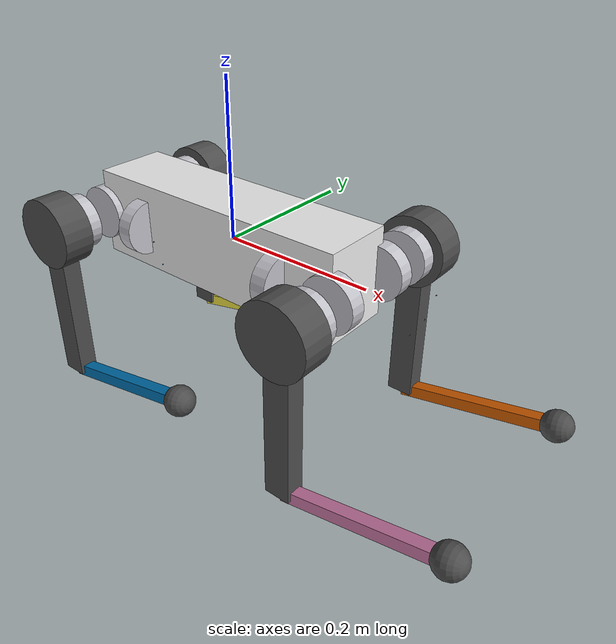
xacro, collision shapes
<?xml version="1.0"?>

<robot name="go1" xmlns:xacro="http://www.ros.org/wiki/xacro">

    <xacro:arg name="DEBUG" default="false" />
    <xacro:arg name="MOCAP" default="false" />

    <xacro:include filename="$(find legged_unitree_description)/urdf/go1/const.xacro" />
    <xacro:include filename="$(find legged_unitree_description)/urdf/go1/materials.xacro" />
    <xacro:include filename="$(find legged_unitree_description)/urdf/go1/leg.xacro" />
    <xacro:include filename="$(find legged_unitree_description)/urdf/go1/gazebo.xacro" />
    <xacro:include filename="$(find legged_unitree_description)/urdf/go1/depthCamera.xacro" />
    <xacro:include filename="$(find legged_unitree_description)/urdf/go1/ultraSound.xacro" />
    <xacro:include filename="$(find legged_unitree_description)/urdf/go1/imu.xacro" />
    <xacro:if value="$(arg MOCAP)">
        <xacro:include filename="$(find legged_unitree_description)/urdf/go1/mocap.xacro" />
    </xacro:if>

    <!-- Rotor related joint and link is only for demonstrate location. -->
    <!-- Actually, the rotor will rotate and the joint is not fixed. Reduction ratio should be
    considered. -->

    <!-- Debug mode will hung up the robot, use "true" or "false" to switch it. -->

    <link name="base">
        <visual>
            <origin rpy="0 0 0" xyz="0 0 0" />
            <geometry>
                <mesh filename="package://legged_unitree_description/meshes/go1/trunk.dae"
                    scale="1 1 1" />
            </geometry>
        </visual>
        <collision>
            <origin rpy="0 0 0" xyz="0 0 0" />
            <geometry>
                <box size="${trunk_length} ${trunk_width} ${trunk_height}" />
            </geometry>
        </collision>
        <inertial>
            <origin rpy="0 0 0" xyz="${trunk_com_x} ${trunk_com_y} ${trunk_com_z}" />
            <mass value="${trunk_mass}" />
            <inertia
                ixx="${trunk_ixx}" ixy="${trunk_ixy}" ixz="${trunk_ixz}"
                iyy="${trunk_iyy}" iyz="${trunk_iyz}"
                izz="${trunk_izz}" />
        </inertial>
    </link>

    <xacro:IMU connected_to="base" imu_name="unitree_imu" xyz="0. 0. 0." rpy="0. 0. 0." />
    <xacro:if value="$(arg MOCAP)">
        <xacro:mocap connected_to="base" mocap_name="unitree_mocap_sensor"
            xyz="0. 0. ${trunk_height/2}"
            rpy="0. 0. 0." />
    </xacro:if>

    <xacro:leg name="RF" mirror="-1" mirror_dae="False" front_hind="1" front_hind_dae="True" />
    <xacro:leg name="LF" mirror="1" mirror_dae="True" front_hind="1" front_hind_dae="True" />
    <xacro:leg name="RH" mirror="-1" mirror_dae="False" front_hind="-1" front_hind_dae="False" />
    <xacro:leg name="LH" mirror="1" mirror_dae="True" front_hind="-1" front_hind_dae="False" />

    <xacro:depthCamera camID="1" name="face">
        <origin rpy="${PI} 0 0" xyz="0.2785 0.0125 0.0167" />
    </xacro:depthCamera>

    <xacro:depthCamera camID="2" name="chin">
        <origin rpy="${PI} ${PI/2} 0" xyz="0.2522 0.0125 -0.0436" />
    </xacro:depthCamera>

    <xacro:depthCamera camID="3" name="left">
        <origin rpy="${PI} 0.2618 ${PI/2}" xyz="-0.066 0.082 -0.0176" />
    </xacro:depthCamera>

    <xacro:depthCamera camID="4" name="right">
        <origin rpy="${PI} 0.2618 ${-PI/2}" xyz="-0.041 -0.082 -0.0176" />
    </xacro:depthCamera>

    <xacro:depthCamera camID="5" name="rearDown">
        <origin rpy="${PI} ${PI/2} 0" xyz="-0.0825 0.0125 -0.04365" />
    </xacro:depthCamera>

    <joint name="camera_laserscan_joint_left" type="fixed">
        <origin rpy="0 0.2618 0" xyz="0 0 0" />
        <parent link="camera_left" />
        <child link="camera_laserscan_link_left" />
    </joint>

    <link name="camera_laserscan_link_left">
    </link>

    <joint name="camera_laserscan_joint_right" type="fixed">
        <origin rpy="0 0.2618 0" xyz="0 0 0" />
        <parent link="camera_right" />
        <child link="camera_laserscan_link_right" />
    </joint>

    <link name="camera_laserscan_link_right">
    </link>

    <xacro:ultraSound name="left">
        <origin rpy="0 0.2618 ${PI/2}" xyz="-0.0535  0.0826 0.00868" />
    </xacro:ultraSound>

    <xacro:ultraSound name="right">
        <origin rpy="0 0.2618 ${-PI/2}" xyz="-0.0535 -0.0826 0.00868" />
    </xacro:ultraSound>

    <xacro:ultraSound name="face">
        <origin rpy="0 0 0" xyz="0.2747 0.0 -0.0088" />
    </xacro:ultraSound>
</robot>

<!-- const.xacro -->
<robot xmlns:xacro="http://www.ros.org/wiki/xacro">

    <!-- Constants for robot dimensions -->
    <xacro:property name="PI" value="3.1415926535897931" />
    <xacro:property name="stick_mass" value="0.00001" />

    <!-- simplified collision value -->
    <xacro:property name="trunk_width" value="0.0935" />
    <xacro:property name="trunk_length" value="0.3762" />
    <xacro:property name="trunk_height" value="0.114" />
    <xacro:property name="hip_radius" value="0.046" />
    <xacro:property name="hip_length" value="0.04" />
    <xacro:property name="thigh_shoulder_radius" value="0.041" />
    <xacro:property name="thigh_shoulder_length" value="0.032" />
    <xacro:property name="thigh_width" value="0.0245" />
    <xacro:property name="thigh_height" value="0.034" />
    <xacro:property name="calf_width" value="0.016" />
    <xacro:property name="calf_height" value="0.016" />
    <xacro:property name="foot_radius" value="0.02" />
    <xacro:property name="stick_radius" value="0.01" />
    <xacro:property name="stick_length" value="0.2" />

    <!-- kinematic value -->
    <xacro:property name="thigh_offset" value="0.08" />
    <xacro:property name="thigh_length" value="0.213" />
    <xacro:property name="calf_length" value="0.213" />

    <!-- leg offset from trunk center value -->
    <xacro:property name="leg_offset_x" value="0.1881" />
    <xacro:property name="leg_offset_y" value="0.04675" />
    <xacro:property name="hip_offset" value="0.08" />

    <!-- offset of link and rotor locations (left front) -->
    <xacro:property name="hip_offset_x" value="0.1881" />
    <xacro:property name="hip_offset_y" value="0.04675" />
    <xacro:property name="hip_offset_z" value="0.0" />
    <xacro:property name="hip_rotor_offset_x" value="0.11215" />
    <xacro:property name="hip_rotor_offset_y" value="0.04675" />
    <xacro:property name="hip_rotor_offset_z" value="0.0" />

    <xacro:property name="thigh_offset_x" value="0" />
    <xacro:property name="thigh_offset_y" value="0.08" />
    <xacro:property name="thigh_offset_z" value="0.0" />
    <xacro:property name="thigh_rotor_offset_x" value="0.0" />
    <xacro:property name="thigh_rotor_offset_y" value="-0.00015" />
    <xacro:property name="thigh_rotor_offset_z" value="0.0" />

    <xacro:property name="calf_offset_x" value="0.0" />
    <xacro:property name="calf_offset_y" value="0.0" />
    <xacro:property name="calf_offset_z" value="-0.213" />
    <xacro:property name="calf_rotor_offset_x" value="0.0" />
    <xacro:property name="calf_rotor_offset_y" value="-0.03235" />
    <xacro:property name="calf_rotor_offset_z" value="0.0" />

    <!-- joint limits -->
    <xacro:property name="damping" value="0.01" /> <!-- Original value: 0.01 -->
    <xacro:property name="friction" value="0.2" /> <!-- Original value: 0.2 -->
    <xacro:property name="hip_position_max" value="1.047" /> <!-- Original value: 0.863 -->
    <xacro:property name="hip_position_min" value="-1.047" /> <!-- Original value: -0.863 -->
    <xacro:property name="hip_velocity_max" value="30.1" />
    <xacro:property name="hip_torque_max" value="23.7" />
    <xacro:property name="thigh_position_max" value="2.966" /> <!-- Original value: 4.501 -->
    <xacro:property name="thigh_position_min" value="-0.663" /> <!-- Original value: -0.686 -->
    <xacro:property name="thigh_velocity_max" value="30.1" />
    <xacro:property name="thigh_torque_max" value="23.7" />
    <xacro:property name="calf_position_max" value="-0.837" /> <!-- Original value: -0.888 -->
    <xacro:property name="calf_position_min" value="-2.721" /> <!-- Original value: -2.818 -->
    <xacro:property name="calf_velocity_max" value="20.06" />
    <xacro:property name="calf_torque_max" value="35.55" />

    <!-- dynamics inertial value        total 12.84kg -->
    <!-- trunk -->
    <xacro:property name="trunk_mass" value="5.204" />
    <xacro:property name="trunk_com_x" value="0.0223" />
    <xacro:property name="trunk_com_y" value="0.002" />
    <xacro:property name="trunk_com_z" value="-0.0005" />
    <xacro:property name="trunk_ixx" value="0.0168128557" />
    <xacro:property name="trunk_ixy" value="-0.0002296769" />
    <xacro:property name="trunk_ixz" value="-0.0002945293" />
    <xacro:property name="trunk_iyy" value="0.063009565" />
    <xacro:property name="trunk_iyz" value="-0.0000418731" />
    <xacro:property name="trunk_izz" value="0.0716547275" />

    <!-- hip (left front) -->
    <xacro:property name="hip_mass" value="0.591" />
    <xacro:property name="hip_com_x" value="-0.005657" />
    <xacro:property name="hip_com_y" value="-0.008752" />
    <xacro:property name="hip_com_z" value="-0.000102" />
    <xacro:property name="hip_ixx" value="0.000334008405" />
    <xacro:property name="hip_ixy" value="-0.000010826066" />
    <xacro:property name="hip_ixz" value="0.000001290732" />
    <xacro:property name="hip_iyy" value="0.000619101213" />
    <xacro:property name="hip_iyz" value="0.000001643194" />
    <xacro:property name="hip_izz" value="0.00040057614" />

    <xacro:property name="hip_rotor_mass" value="0.089" />
    <xacro:property name="hip_rotor_com_x" value="0.0" />
    <xacro:property name="hip_rotor_com_y" value="0.0" />
    <xacro:property name="hip_rotor_com_z" value="0.0" />
    <xacro:property name="hip_rotor_ixx" value="0.000111842" />
    <xacro:property name="hip_rotor_ixy" value="0.0" />
    <xacro:property name="hip_rotor_ixz" value="0.0" />
    <xacro:property name="hip_rotor_iyy" value="0.000059647" />
    <xacro:property name="hip_rotor_iyz" value="0.0" />
    <xacro:property name="hip_rotor_izz" value="0.000059647" />

    <!-- thigh -->
    <xacro:property name="thigh_mass" value="0.92" />
    <xacro:property name="thigh_com_x" value="-0.003342" />
    <xacro:property name="thigh_com_y" value="-0.018054" />
    <xacro:property name="thigh_com_z" value="-0.033451" />
    <xacro:property name="thigh_ixx" value="0.004431760472" />
    <xacro:property name="thigh_ixy" value="0.000057496807" />
    <xacro:property name="thigh_ixz" value="-0.000218457134" />
    <xacro:property name="thigh_iyy" value="0.004485671726" />
    <xacro:property name="thigh_iyz" value="0.000572001265" />
    <xacro:property name="thigh_izz" value="0.000740309489" />

    <xacro:property name="thigh_rotor_mass" value="0.089" />
    <xacro:property name="thigh_rotor_com_x" value="0.0" />
    <xacro:property name="thigh_rotor_com_y" value="0.0" />
    <xacro:property name="thigh_rotor_com_z" value="0.0" />
    <xacro:property name="thigh_rotor_ixx" value="0.000059647" />
    <xacro:property name="thigh_rotor_ixy" value="0.0" />
    <xacro:property name="thigh_rotor_ixz" value="0.0" />
    <xacro:property name="thigh_rotor_iyy" value="0.000111842" />
    <xacro:property name="thigh_rotor_iyz" value="0.0" />
    <xacro:property name="thigh_rotor_izz" value="0.000059647" />

    <!-- calf -->
    <xacro:property name="calf_mass" value="0.135862" />
    <xacro:property name="calf_com_x" value="0.006197" />
    <xacro:property name="calf_com_y" value="0.001408" />
    <xacro:property name="calf_com_z" value="-0.116695" />
    <xacro:property name="calf_ixx" value="0.001088793059" />
    <xacro:property name="calf_ixy" value="-0.000000255679" />
    <xacro:property name="calf_ixz" value="0.000007117814" />
    <xacro:property name="calf_iyy" value="0.001100428748" />
    <xacro:property name="calf_iyz" value="0.000002077264" />
    <xacro:property name="calf_izz" value="0.000024787446" />

    <xacro:property name="calf_rotor_mass" value="0.089" />
    <xacro:property name="calf_rotor_com_x" value="0.0" />
    <xacro:property name="calf_rotor_com_y" value="0.0" />
    <xacro:property name="calf_rotor_com_z" value="0.0" />
    <xacro:property name="calf_rotor_ixx" value="0.000059647" />
    <xacro:property name="calf_rotor_ixy" value="0.0" />
    <xacro:property name="calf_rotor_ixz" value="0.0" />
    <xacro:property name="calf_rotor_iyy" value="0.000111842" />
    <xacro:property name="calf_rotor_iyz" value="0.0" />
    <xacro:property name="calf_rotor_izz" value="0.000059647" />

    <!-- foot -->
    <xacro:property name="foot_mass" value="0.06" />

</robot>

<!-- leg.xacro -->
<robot xmlns:xacro="http://www.ros.org/wiki/xacro">

    <xacro:include filename="$(find legged_unitree_description)/urdf/go1/transmission.xacro" />

    <xacro:macro name="leg" params="name mirror mirror_dae front_hind front_hind_dae">

        <joint name="${name}_HAA" type="revolute">
            <xacro:if value="${(mirror_dae == False) and (front_hind_dae == True)}">
                <origin rpy="0 0 0" xyz="${leg_offset_x} ${-leg_offset_y} 0" />
            </xacro:if>
            <xacro:if value="${(mirror_dae == True) and (front_hind_dae == True)}">
                <origin rpy="0 0 0" xyz="${leg_offset_x} ${leg_offset_y} 0" />
            </xacro:if>
            <xacro:if value="${(mirror_dae == False) and (front_hind_dae == False)}">
                <origin rpy="0 0 0" xyz="${-leg_offset_x} ${-leg_offset_y} 0" />
            </xacro:if>
            <xacro:if value="${(mirror_dae == True) and (front_hind_dae == False)}">
                <origin rpy="0 0 0" xyz="${-leg_offset_x} ${leg_offset_y} 0" />
            </xacro:if>
            <parent link="base" />
            <child link="${name}_hip" />
            <axis xyz="1 0 0" />
            <dynamics damping="${damping}" friction="${friction}" />
            <xacro:if value="${(mirror_dae == True)}">
                <limit effort="${hip_torque_max}" velocity="${hip_velocity_max}"
                    lower="${hip_position_min}" upper="${hip_position_max}" />
            </xacro:if>
            <xacro:if value="${(mirror_dae == False)}">
                <limit effort="${hip_torque_max}" velocity="${hip_velocity_max}"
                    lower="${-hip_position_max}" upper="${-hip_position_min}" />
            </xacro:if>
        </joint>

        <joint name="${name}_hip_rotor_joint" type="fixed">
            <xacro:if value="${(mirror_dae == False) and (front_hind_dae == True)}">
                <origin rpy="0 0 0" xyz="${hip_rotor_offset_x} ${-hip_rotor_offset_y} 0" />
            </xacro:if>
            <xacro:if value="${(mirror_dae == True) and (front_hind_dae == True)}">
                <origin rpy="0 0 0" xyz="${hip_rotor_offset_x} ${hip_rotor_offset_y} 0" />
            </xacro:if>
            <xacro:if value="${(mirror_dae == False) and (front_hind_dae == False)}">
                <origin rpy="0 0 0" xyz="${-hip_rotor_offset_x} ${-hip_rotor_offset_y} 0" />
            </xacro:if>
            <xacro:if value="${(mirror_dae == True) and (front_hind_dae == False)}">
                <origin rpy="0 0 0" xyz="${-hip_rotor_offset_x} ${hip_rotor_offset_y} 0" />
            </xacro:if>
            <parent link="base" />
            <child link="${name}_hip_rotor" />
        </joint>

        <link name="${name}_hip">
            <visual>
                <xacro:if value="${(mirror_dae == True) and (front_hind_dae == True)}">
                    <origin rpy="0 0 0" xyz="0 0 0" />
                </xacro:if>
                <xacro:if value="${(mirror_dae == False) and (front_hind_dae == True)}">
                    <origin rpy="${PI} 0 0" xyz="0 0 0" />
                </xacro:if>
                <xacro:if value="${(mirror_dae == True) and (front_hind_dae == False)}">
                    <origin rpy="0 ${PI} 0" xyz="0 0 0" />
                </xacro:if>
                <xacro:if value="${(mirror_dae == False) and (front_hind_dae == False)}">
                    <origin rpy="${PI} ${PI} 0" xyz="0 0 0" />
                </xacro:if>
                <geometry>
                    <mesh filename="package://legged_unitree_description/meshes/go1/hip.dae"
                        scale="1 1 1" />
                </geometry>
            </visual>
            <collision>
                <origin rpy="${PI/2.0} 0 0" xyz="0 ${hip_offset*mirror} 0" />
                <geometry>
                    <cylinder length="${hip_length}" radius="${hip_radius}" />
                </geometry>
            </collision>
            <inertial>
                <origin rpy="0 0 0" xyz="${hip_com_x*front_hind} ${hip_com_y*mirror} ${hip_com_z}" />
                <mass value="${hip_mass}" />
                <inertia
                    ixx="${hip_ixx}" ixy="${hip_ixy*mirror*front_hind}" ixz="${hip_ixz*front_hind}"
                    iyy="${hip_iyy}" iyz="${hip_iyz*mirror}"
                    izz="${hip_izz}" />
            </inertial>
        </link>

        <link name="${name}_hip_rotor">
            <visual>
                <origin rpy="0 ${PI/2.0} 0" xyz="0 0 0" />
                <geometry>
                    <cylinder length="0.02" radius="0.035" />
                </geometry>
                <material name="silver" />
            </visual>
            <collision>
                <origin rpy="0 ${PI/2.0} 0" xyz="0 0 0" />
                <geometry>
                    <cylinder length="0.02" radius="0.035" />
                </geometry>
            </collision>
            <inertial>
                <origin rpy="0 0 0" xyz="${hip_rotor_com_x} ${hip_rotor_com_y} ${hip_rotor_com_z}" />
                <mass value="${hip_rotor_mass}" />
                <inertia
                    ixx="${hip_rotor_ixx}" ixy="${hip_rotor_ixy}" ixz="${hip_rotor_ixz}"
                    iyy="${hip_rotor_iyy}" iyz="${hip_rotor_iyz}"
                    izz="${hip_rotor_izz}" />
            </inertial>
        </link>

        <joint name="${name}_HFE" type="revolute">
            <origin rpy="0 0 0" xyz="0 ${thigh_offset*mirror} 0" />
            <parent link="${name}_hip" />
            <child link="${name}_thigh" />
            <axis xyz="0 1 0" />
            <dynamics damping="${damping}" friction="${friction}" />
            <limit effort="${thigh_torque_max}" velocity="${thigh_velocity_max}"
                lower="${thigh_position_min}" upper="${thigh_position_max}" />
        </joint>

        <joint name="${name}_thigh_rotor_joint" type="fixed">
            <origin rpy="0 0 0" xyz="${thigh_rotor_offset_x} ${thigh_rotor_offset_y*mirror} 0" />
            <parent link="${name}_hip" />
            <child link="${name}_thigh_rotor" />
        </joint>

        <link name="${name}_thigh">
            <visual>
                <origin rpy="0 0 0" xyz="0 0 0" />
                <geometry>
                    <xacro:if value="${mirror_dae == True}">
                        <mesh filename="package://legged_unitree_description/meshes/go1/thigh.dae"
                            scale="1 1 1" />
                    </xacro:if>
                    <xacro:if value="${mirror_dae == False}">
                        <mesh
                            filename="package://legged_unitree_description/meshes/go1/thigh_mirror.dae"
                            scale="1 1 1" />
                    </xacro:if>
                </geometry>
            </visual>
            <collision>
                <origin rpy="0 ${PI/2.0} 0" xyz="0 0 ${-thigh_length/2.0}" />
                <geometry>
                    <box size="${thigh_length} ${thigh_width} ${thigh_height}" />
                </geometry>
            </collision>
            <inertial>
                <origin rpy="0 0 0" xyz="${thigh_com_x} ${thigh_com_y*mirror} ${thigh_com_z}" />
                <mass value="${thigh_mass}" />
                <inertia
                    ixx="${thigh_ixx}" ixy="${thigh_ixy*mirror}" ixz="${thigh_ixz}"
                    iyy="${thigh_iyy}" iyz="${thigh_iyz*mirror}"
                    izz="${thigh_izz}" />
            </inertial>
        </link>

        <link name="${name}_thigh_rotor">
            <visual>
                <origin rpy="${PI/2.0} 0 0" xyz="0 0 0" />
                <geometry>
                    <cylinder length="0.02" radius="0.035" />
                </geometry>
                <material name="silver" />
            </visual>
            <collision>
                <origin rpy="${PI/2.0} 0 0" xyz="0 0 0" />
                <geometry>
                    <cylinder length="0.02" radius="0.035" />
                </geometry>
            </collision>
            <inertial>
                <origin rpy="0 0 0"
                    xyz="${thigh_rotor_com_x} ${thigh_rotor_com_y} ${thigh_rotor_com_z}" />
                <mass value="${thigh_rotor_mass}" />
                <inertia
                    ixx="${thigh_rotor_ixx}" ixy="${thigh_rotor_ixy}" ixz="${thigh_rotor_ixz}"
                    iyy="${thigh_rotor_iyy}" iyz="${thigh_rotor_iyz}"
                    izz="${thigh_rotor_izz}" />
            </inertial>
        </link>

        <joint name="${name}_KFE" type="revolute">
            <origin rpy="0 0 0" xyz="0 0 ${-thigh_length}" />
            <parent link="${name}_thigh" />
            <child link="${name}_calf" />
            <axis xyz="0 1 0" />
            <dynamics damping="${damping}" friction="${friction}" />
            <limit effort="${calf_torque_max}" velocity="${calf_velocity_max}"
                lower="${calf_position_min}" upper="${calf_position_max}" />
        </joint>

        <joint name="${name}_calf_rotor_joint" type="fixed">
            <origin rpy="0 0 0" xyz="${calf_rotor_offset_x} ${calf_rotor_offset_y*mirror} 0" />
            <parent link="${name}_thigh" />
            <child link="${name}_calf_rotor" />
        </joint>

        <link name="${name}_calf">
            <visual>
                <origin rpy="0 0 0" xyz="0 0 0" />
                <geometry>
                    <mesh filename="package://legged_unitree_description/meshes/go1/calf.dae"
                        scale="1 1 1" />
                </geometry>
            </visual>
            <collision>
                <origin rpy="0 ${PI/2.0} 0" xyz="0 0 ${-calf_length/2.0}" />
                <geometry>
                    <box size="${calf_length} ${calf_width} ${calf_height}" />
                </geometry>
            </collision>
            <inertial>
                <origin rpy="0 0 0" xyz="${calf_com_x} ${calf_com_y} ${calf_com_z}" />
                <mass value="${calf_mass}" />
                <inertia
                    ixx="${calf_ixx}" ixy="${calf_ixy}" ixz="${calf_ixz}"
                    iyy="${calf_iyy}" iyz="${calf_iyz}"
                    izz="${calf_izz}" />
            </inertial>
        </link>

        <link name="${name}_calf_rotor">
            <visual>
                <origin rpy="${PI/2.0} 0 0" xyz="0 0 0" />
                <geometry>
                    <cylinder length="0.02" radius="0.035" />
                </geometry>
                <material name="silver" />
            </visual>
            <collision>
                <origin rpy="${PI/2.0} 0 0" xyz="0 0 0" />
                <geometry>
                    <cylinder length="0.02" radius="0.035" />
                </geometry>
            </collision>
            <inertial>
                <origin rpy="0 0 0"
                    xyz="${calf_rotor_com_x} ${calf_rotor_com_y} ${calf_rotor_com_z}" />
                <mass value="${calf_rotor_mass}" />
                <inertia
                    ixx="${calf_rotor_ixx}" ixy="${calf_rotor_ixy}" ixz="${calf_rotor_ixz}"
                    iyy="${calf_rotor_iyy}" iyz="${calf_rotor_iyz}"
                    izz="${calf_rotor_izz}" />
            </inertial>
        </link>

        <joint name="${name}_foot_fixed" type="fixed">
            <origin rpy="0 0 0" xyz="0 0 ${-(calf_length)}" />
            <parent link="${name}_calf" />
            <child link="${name}_FOOT" />
        </joint>

        <link name="${name}_FOOT">
            <visual>
                <origin rpy="0 0 0" xyz="0 0 0" />
                <geometry>
                    <sphere radius="${foot_radius-0.01}" />
                </geometry>
            </visual>
            <collision>
                <origin rpy="0 0 0" xyz="0 0 0" />
                <geometry>
                    <sphere radius="${foot_radius}" />
                </geometry>
            </collision>
            <inertial>
                <mass value="${foot_mass}" />
                <inertia
                    ixx="${(2*foot_mass)/5.0*(foot_radius*foot_radius)}" ixy="0.0" ixz="0.0"
                    iyy="${(2*foot_mass)/5.0*(foot_radius*foot_radius)}" iyz="0.0"
                    izz="${(2*foot_mass)/5.0*(foot_radius*foot_radius)}" />
            </inertial>
        </link>

        <gazebo reference="${name}_foot_fixed">
            <disableFixedJointLumping>true</disableFixedJointLumping>
        </gazebo>

        <xacro:leg_transmission name="${name}" />
    </xacro:macro>
</robot>

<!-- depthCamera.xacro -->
<robot xmlns:xacro="http://www.ros.org/wiki/xacro">
    <xacro:macro name="depthCamera" params="camID name *origin">
        <joint name="camera_joint_${name}" type="fixed">
            <xacro:insert_block name="origin"/>
            <parent link="base"/>
            <child link="camera_${name}"/>
        </joint>

        <link name="camera_${name}">
            <collision>
            <origin xyz="0 0 0" rpy="0 0 0"/>
            <geometry>
                <box size=".001 .001 .001"/>
            </geometry>
            </collision>

            <visual>
            <origin xyz="0 0 0" rpy="0 0 0"/>
            <geometry>
                <mesh filename="package://legged_unitree_description/meshes/go1/depthCamera.dae" scale="1 1 1"/>
            </geometry>
            </visual>

            <inertial>
            <mass value="1e-5" />
            <origin xyz="0 0 0" rpy="0 0 0"/>
            <inertia ixx="1e-6" ixy="0" ixz="0" iyy="1e-6" iyz="0" izz="1e-6" />
            </inertial>
        </link>

        <joint name="camera_optical_joint_${name}" type="fixed">
            <origin xyz="0 0 0" rpy="${-pi/2} 0 ${-pi/2}"/>
            <parent link="camera_${name}"/>
            <child link="camera_optical_${name}"/>
        </joint>

        <link name="camera_optical_${name}">
        </link>

        <gazebo reference="camera_${name}">
            <sensor name="camera_${name}_camera" type="depth">
                <update_rate>16</update_rate>
                <camera>
                    <horizontal_fov>2.094</horizontal_fov>
                    <image>
                        <width>928</width>
                        <height>800</height>
                        <format>R8G8B8</format>
                    </image>
                    <clip>
                        <near>0.1</near>
                        <far>5</far>
                    </clip>
                </camera>
                <plugin name="camera_${name}_controller" filename="libgazebo_ros_openni_kinect.so">
                    <baseline>0.025</baseline>
                    <alwaysOn>true</alwaysOn>
                    <updateRate>0.0</updateRate>
                    <cameraName>camera_${name}_ir</cameraName>
                    <imageTopicName>/camera_${name}/color/image_raw</imageTopicName>
                    <cameraInfoTopicName>/camera_${name}/color/camera_info</cameraInfoTopicName>
                    <depthImageTopicName>/camera_${name}/depth/image_raw</depthImageTopicName>
                    <depthImageInfoTopicName>/camera_${name}/depth/camera_info</depthImageInfoTopicName>
                    <pointCloudTopicName>/cam${camID}/point_cloud_${name}</pointCloudTopicName>
                    <frameName>camera_optical_${name}</frameName>
                    <pointCloudCutoff>0.1</pointCloudCutoff>
                    <pointCloudCutoffMax>1.5</pointCloudCutoffMax>
                    <distortionK1>0.0</distortionK1>
                    <distortionK2>0.0</distortionK2>
                    <distortionK3>0.0</distortionK3>
                    <distortionT1>0.0</distortionT1>
                    <distortionT2>0.0</distortionT2>
                    <CxPrime>0</CxPrime>
                    <Cx>0.0045</Cx>
                    <Cy>0.0039</Cy>
                    <focalLength>0</focalLength>
                    <hackBaseline>0</hackBaseline>
                </plugin>
            </sensor>
        </gazebo>

    </xacro:macro>
</robot>

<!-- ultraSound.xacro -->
<robot xmlns:xacro="http://www.ros.org/wiki/xacro">
    <xacro:macro name="ultraSound" params="name *origin">
        <joint name="ultraSound_joint_${name}" type="fixed">
            <xacro:insert_block name="origin"/>
            <parent link="base"/>
            <child link="ultraSound_${name}"/>
        </joint>
        <link name="ultraSound_${name}">
            <collision>
            <origin xyz="0 0 0" rpy="0 0 0"/>
            <geometry>
                <box size=".001 .001 .001"/>
            </geometry>
            </collision>

            <visual>
            <origin xyz="0 0 0" rpy="0 0 0"/>
            <geometry>
                <mesh filename="package://legged_unitree_description/meshes/go1/ultraSound.dae" scale="1 1 1"/>
            </geometry>
            <material name="black"/>
            </visual>

            <inertial>
            <mass value="1e-5" />
            <origin xyz="0 0 0" rpy="0 0 0"/>
            <inertia ixx="1e-6" ixy="0" ixz="0" iyy="1e-6" iyz="0" izz="1e-6" />
            </inertial>
        </link>
    </xacro:macro>
</robot>

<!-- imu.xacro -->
<robot xmlns:xacro="http://www.ros.org/wiki/xacro" name="imu">
    <xacro:macro name="IMU" params="connected_to imu_name xyz:='0 0 0' rpy:='0 0 0' ">
        <!-- Imu is fixed to the base link -->
        <joint name="${imu_name}_joint" type="fixed">
            <origin xyz="${xyz}" rpy="${rpy}"/>
            <parent link="${connected_to}"/>
            <child link="${imu_name}"/>
        </joint>
        <!-- Imu link -->
        <link name="${imu_name}">
            <inertial>
                <mass value="0.001"/>
                <origin rpy="0 0 0" xyz="0 0 0"/>
                <inertia ixx="0.000001" ixy="0" ixz="0" iyy="0.000001" iyz="0" izz="0.000001"/>
            </inertial>
            <visual>
                <origin rpy="0 0 0" xyz="0 0 0"/>
                <geometry>
                    <box size="0.015 0.015 0.004"/>
                </geometry>
            </visual>
            <material name="orange">
                <color rgba="255 108 10 255"/>
            </material>
        </link>
        <gazebo reference="${imu_name}">
            <material>Gazebo/Orange</material>
        </gazebo>
        <gazebo reference="${imu_name}_joint">
            <disableFixedJointLumping>true</disableFixedJointLumping>
        </gazebo>
    </xacro:macro>
</robot>
